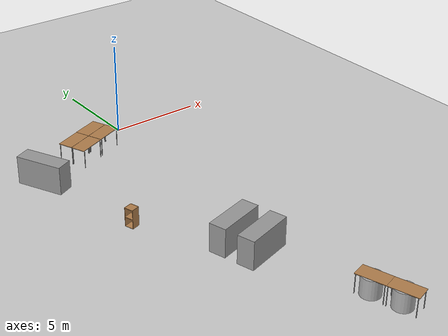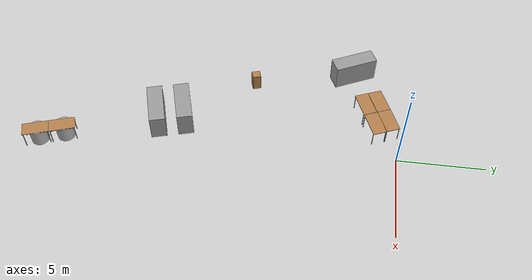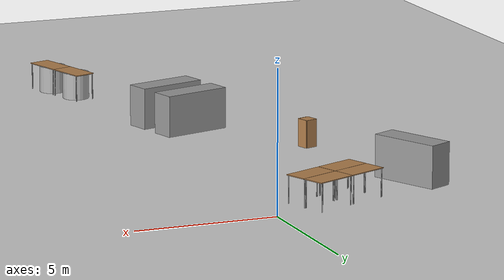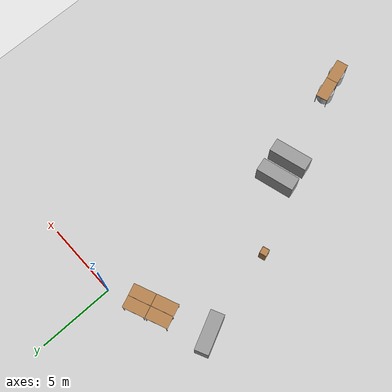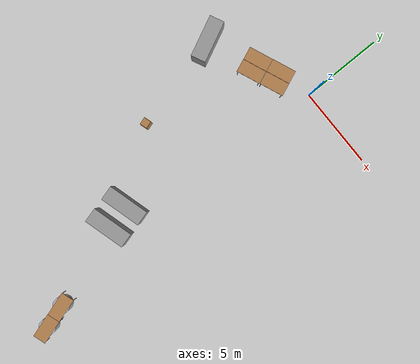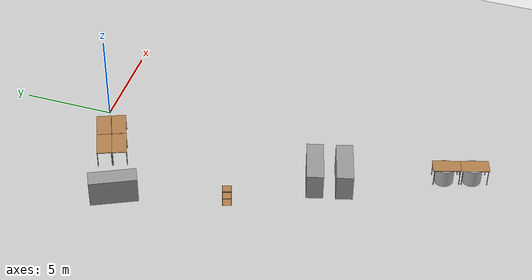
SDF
<sdf version="1.10">
 <world name="maze">
  <model name="ground_plane">
   <static>true</static>
   <link name="link">
    <collision name="collision">
     <geometry><plane><normal>0 0 1</normal><size>100 100</size></plane></geometry>
    </collision>
    <visual name="visual">
     <geometry><plane><normal>0 0 1</normal><size>100 100</size></plane></geometry>
     <material>
      <ambient>0.800000012 0.800000012 0.800000012 1</ambient>
      <diffuse>0.800000012 0.800000012 0.800000012 1</diffuse>
      <specular>0.800000012 0.800000012 0.800000012 1</specular>
     </material>
     <plugin name="__default__" filename="__default__"/>
    </visual>
    <inertial>
     <mass>1</mass>
     <inertia><ixx>1</ixx><ixy>0</ixy><ixz>0</ixz><iyy>1</iyy><iyz>0</iyz><izz>1</izz></inertia>
    </inertial>
   </link>
   <plugin name="__default__" filename="__default__"/>
  </model>
  <model name="unit_box_clone_clone_1">
   <link name="link">
    <inertial>
     <mass>4.59091</mass>
     <inertia>
      <ixx>4.0056099999999999</ixx>
      <ixy>0</ixy>
      <ixz>0</ixz>
      <iyy>1.8309800000000001</iyy>
      <iyz>0</iyz>
      <izz>2.7995999999999999</izz>
     </inertia>
    </inertial>
    <visual name="visual">
     <geometry><box><size>0.90377099999999999 2.5497000000000001 1.99227</size></box></geometry>
     <material>
      <script><name>Gazebo/Grey</name><uri>file:///usr/share/gz/gz-sim8/media/gazebo.material</uri></script>
      <shader type="pixel"/>
     </material>
     <cast_shadows>false</cast_shadows>
    </visual>
    <collision name="collision">
     <geometry><box><size>0.90377099999999999 2.5497000000000001 1.99227</size></box></geometry>
     <surface>
      <friction>
       <ode><mu>1</mu><mu2>1</mu2><fdir1>0 0 0</fdir1><slip1>0</slip1><slip2>0</slip2></ode>
       <torsional>
        <coefficient>1</coefficient>
        <patch_radius>0</patch_radius>
        <surface_radius>0</surface_radius>
        <use_patch_radius>true</use_patch_radius>
        <ode><slip>0</slip></ode>
       </torsional>
      </friction>
      <bounce><restitution_coefficient>0</restitution_coefficient><threshold>1000000</threshold></bounce>
      <contact>
       <collide_without_contact>false</collide_without_contact>
       <collide_without_contact_bitmask>1</collide_without_contact_bitmask>
       <collide_bitmask>1</collide_bitmask>
       <ode>
        <soft_cfm>0</soft_cfm>
        <soft_erp>0.20000000000000001</soft_erp>
        <kp>10000000000000</kp>
        <kd>1</kd>
        <max_vel>0.01</max_vel>
        <min_depth>0</min_depth>
       </ode>
       <bullet>
        <split_impulse>true</split_impulse>
        <split_impulse_penetration_threshold>-0.01</split_impulse_penetration_threshold>
        <soft_cfm>0</soft_cfm>
        <soft_erp>0.20000000000000001</soft_erp>
        <kp>10000000000000</kp>
        <kd>1</kd>
       </bullet>
      </contact>
     </surface>
    </collision>
   </link>
   <static>false</static>
   <pose>-1.7439735747344609 -12.485835531810412 0.50210847685340998 -2.5052772549634027e-18 -8.0887639393970878e-18 -1.3000000012872535</pose>
  </model>
  <model name="unit_box_clone_clone_2">
   <link name="link">
    <inertial>
     <mass>4.59091</mass>
     <inertia>
      <ixx>4.0056099999999999</ixx>
      <ixy>0</ixy>
      <ixz>0</ixz>
      <iyy>1.8309800000000001</iyy>
      <iyz>0</iyz>
      <izz>2.7995999999999999</izz>
     </inertia>
    </inertial>
    <visual name="visual">
     <geometry><box><size>0.90377099999999999 2.5497000000000001 1.99227</size></box></geometry>
     <material>
      <script><name>Gazebo/Grey</name><uri>file:///usr/share/gz/gz-sim8/media/gazebo.material</uri></script>
      <shader type="pixel"/>
     </material>
     <cast_shadows>false</cast_shadows>
    </visual>
    <collision name="collision">
     <geometry><box><size>0.90377099999999999 2.5497000000000001 1.99227</size></box></geometry>
     <surface>
      <friction>
       <ode><mu>1</mu><mu2>1</mu2><fdir1>0 0 0</fdir1><slip1>0</slip1><slip2>0</slip2></ode>
       <torsional>
        <coefficient>1</coefficient>
        <patch_radius>0</patch_radius>
        <surface_radius>0</surface_radius>
        <use_patch_radius>true</use_patch_radius>
        <ode><slip>0</slip></ode>
       </torsional>
      </friction>
      <bounce><restitution_coefficient>0</restitution_coefficient><threshold>1000000</threshold></bounce>
      <contact>
       <collide_without_contact>false</collide_without_contact>
       <collide_without_contact_bitmask>1</collide_without_contact_bitmask>
       <collide_bitmask>1</collide_bitmask>
       <ode>
        <soft_cfm>0</soft_cfm>
        <soft_erp>0.20000000000000001</soft_erp>
        <kp>10000000000000</kp>
        <kd>1</kd>
        <max_vel>0.01</max_vel>
        <min_depth>0</min_depth>
       </ode>
       <bullet>
        <split_impulse>true</split_impulse>
        <split_impulse_penetration_threshold>-0.01</split_impulse_penetration_threshold>
        <soft_cfm>0</soft_cfm>
        <soft_erp>0.20000000000000001</soft_erp>
        <kp>10000000000000</kp>
        <kd>1</kd>
       </bullet>
      </contact>
     </surface>
    </collision>
   </link>
   <static>false</static>
   <pose>-1.3428011409448706 -13.994542338813043 0.50210847685340998 -1.7952223853358381e-18 -1.2574476912388277e-17 -1.3000000012872535</pose>
  </model>
  <model name="cabinet_clone_1">
   <static>true</static>
   <link name="cabinet_bottom_plate">
    <inertial>
     <pose>0 0 -1 0 0 0</pose>
     <inertia>
      <ixx>2.0499999999999998</ixx>
      <ixy>0</ixy>
      <ixz>0</ixz>
      <iyy>2.0499999999999998</iyy>
      <iyz>0</iyz>
      <izz>2.0499999999999998</izz>
     </inertia>
     <mass>25</mass>
    </inertial>
    <collision name="cabinet_bottom_plate_geom">
     <pose>0 0 0.01 0 0 0</pose>
     <geometry><box><size>0.45000000000000001 0.45000000000000001 0.02</size></box></geometry>
    </collision>
    <visual name="cabinet_bottom_plate_geom_visual">
     <pose>0 0 0.01 0 0 0</pose>
     <geometry><box><size>0.45000000000000001 0.45000000000000001 0.02</size></box></geometry>
     <material>
      <script><uri>file:///usr/share/gz/gz-sim8/media/gazebo.material</uri><name>Gazebo/Wood</name></script>
     </material>
    </visual>
    <collision name="cabinet_bottom_plate_geom_cabinet_back_plate">
     <pose>0.23499999999999999 0 0.51000000000000001 0 0 0</pose>
     <geometry><box><size>0.02 0.45000000000000001 1.02</size></box></geometry>
    </collision>
    <visual name="cabinet_bottom_plate_geom_cabinet_back_plate_visual">
     <pose>0.23499999999999999 0 0.51000000000000001 0 0 0</pose>
     <geometry><box><size>0.02 0.45000000000000001 1.02</size></box></geometry>
     <material>
      <script><uri>file:///usr/share/gz/gz-sim8/media/gazebo.material</uri><name>Gazebo/Wood</name></script>
     </material>
    </visual>
    <collision name="cabinet_bottom_plate_geom_cabinet_left_plate">
     <pose>0 0.23499999999999999 0.51000000000000001 0 0 0</pose>
     <geometry><box><size>0.45000000000000001 0.02 1.02</size></box></geometry>
    </collision>
    <visual name="cabinet_bottom_plate_geom_cabinet_left_plate_visual">
     <pose>0 0.23499999999999999 0.51000000000000001 0 0 0</pose>
     <geometry><box><size>0.45000000000000001 0.02 1.02</size></box></geometry>
     <material>
      <script><uri>file:///usr/share/gz/gz-sim8/media/gazebo.material</uri><name>Gazebo/Wood</name></script>
     </material>
    </visual>
    <collision name="cabinet_bottom_plate_geom_cabinet_middle_plate">
     <pose>0 0 0.51000000000000001 0 0 0</pose>
     <geometry><box><size>0.45000000000000001 0.45000000000000001 0.02</size></box></geometry>
    </collision>
    <visual name="cabinet_bottom_plate_geom_cabinet_middle_plate_visual">
     <pose>0 0 0.51000000000000001 0 0 0</pose>
     <geometry><box><size>0.45000000000000001 0.45000000000000001 0.02</size></box></geometry>
     <material>
      <script><uri>file:///usr/share/gz/gz-sim8/media/gazebo.material</uri><name>Gazebo/Wood</name></script>
     </material>
    </visual>
    <collision name="cabinet_bottom_plate_geom_cabinet_right_plate">
     <pose>0 -0.23499999999999999 0.51000000000000001 0 0 0</pose>
     <geometry><box><size>0.45000000000000001 0.02 1.02</size></box></geometry>
    </collision>
    <visual name="cabinet_bottom_plate_geom_cabinet_right_plate_visual">
     <pose>0 -0.23499999999999999 0.51000000000000001 0 0 0</pose>
     <geometry><box><size>0.45000000000000001 0.02 1.02</size></box></geometry>
     <material>
      <script><uri>file:///usr/share/gz/gz-sim8/media/gazebo.material</uri><name>Gazebo/Wood</name></script>
     </material>
    </visual>
    <collision name="cabinet_bottom_plate_geom_cabinet_top_plate">
     <pose>0 0 1.01 0 0 0</pose>
     <geometry><box><size>0.45000000000000001 0.45000000000000001 0.02</size></box></geometry>
    </collision>
    <visual name="cabinet_bottom_plate_geom_cabinet_top_plate_visual">
     <pose>0 0 1.01 0 0 0</pose>
     <geometry><box><size>0.45000000000000001 0.45000000000000001 0.02</size></box></geometry>
     <material>
      <script><uri>file:///usr/share/gz/gz-sim8/media/gazebo.material</uri><name>Gazebo/Wood</name></script>
     </material>
    </visual>
   </link>
   <pose>-4.7265032566740661 -8.5677660734086736 0 0 0 0.29999999139831662</pose>
  </model>
  <model name="table_1_1">
   <static>true</static>
   <link name="link">
    <collision name="surface">
     <pose>0 0 1 0 0 0</pose>
     <geometry><box><size>1.5 0.80000000000000004 0.029999999999999999</size></box></geometry>
     <surface><friction><ode><mu>0.59999999999999998</mu><mu2>0.59999999999999998</mu2></ode></friction></surface>
    </collision>
    <visual name="visual1">
     <pose>0 0 1 0 0 0</pose>
     <geometry><box><size>1.5 0.80000000000000004 0.029999999999999999</size></box></geometry>
     <material>
      <script><uri>file:///usr/share/gz/gz-sim8/media/gazebo.material</uri><name>Gazebo/Wood</name></script>
     </material>
    </visual>
    <collision name="front_left_leg">
     <pose>0.68000000000000005 0.38 0.5 0 0 0</pose>
     <geometry><cylinder><radius>0.02</radius><length>1</length></cylinder></geometry>
    </collision>
    <visual name="front_left_leg">
     <pose>0.68000000000000005 0.38 0.5 0 0 0</pose>
     <geometry><cylinder><radius>0.02</radius><length>1</length></cylinder></geometry>
     <material>
      <script><uri>file:///usr/share/gz/gz-sim8/media/gazebo.material</uri><name>Gazebo/Grey</name></script>
     </material>
    </visual>
    <collision name="front_right_leg">
     <pose>0.68000000000000005 -0.38 0.5 0 0 0</pose>
     <geometry><cylinder><radius>0.02</radius><length>1</length></cylinder></geometry>
    </collision>
    <visual name="front_right_leg">
     <pose>0.68000000000000005 -0.38 0.5 0 0 0</pose>
     <geometry><cylinder><radius>0.02</radius><length>1</length></cylinder></geometry>
     <material>
      <script><uri>file:///usr/share/gz/gz-sim8/media/gazebo.material</uri><name>Gazebo/Grey</name></script>
     </material>
    </visual>
    <collision name="back_right_leg">
     <pose>-0.68000000000000005 -0.38 0.5 0 0 0</pose>
     <geometry><cylinder><radius>0.02</radius><length>1</length></cylinder></geometry>
    </collision>
    <visual name="back_right_leg">
     <pose>-0.68000000000000005 -0.38 0.5 0 0 0</pose>
     <geometry><cylinder><radius>0.02</radius><length>1</length></cylinder></geometry>
     <material>
      <script><uri>file:///usr/share/gz/gz-sim8/media/gazebo.material</uri><name>Gazebo/Grey</name></script>
     </material>
    </visual>
    <collision name="back_left_leg">
     <pose>-0.68000000000000005 0.38 0.5 0 0 0</pose>
     <geometry><cylinder><radius>0.02</radius><length>1</length></cylinder></geometry>
    </collision>
    <visual name="back_left_leg">
     <pose>-0.68000000000000005 0.38 0.5 0 0 0</pose>
     <geometry><cylinder><radius>0.02</radius><length>1</length></cylinder></geometry>
     <material>
      <script><uri>file:///usr/share/gz/gz-sim8/media/gazebo.material</uri><name>Gazebo/Grey</name></script>
     </material>
    </visual>
    <inertial>
     <mass>1</mass>
     <inertia><ixx>1</ixx><ixy>0</ixy><ixz>0</ixz><iyy>1</iyy><iyz>0</iyz><izz>1</izz></inertia>
    </inertial>
   </link>
   <pose>0.48050966858863831 -19.112222671508789 0 0 0 -1.2661400235226867</pose>
  </model>
  <model name="table_0_clone_1_2_1">
   <static>true</static>
   <link name="link">
    <collision name="surface">
     <pose>0 0 1 0 0 0</pose>
     <geometry><box><size>1.5 0.80000000000000004 0.029999999999999999</size></box></geometry>
     <surface><friction><ode><mu>0.59999999999999998</mu><mu2>0.59999999999999998</mu2></ode></friction></surface>
    </collision>
    <visual name="visual1">
     <pose>0 0 1 0 0 0</pose>
     <geometry><box><size>1.5 0.80000000000000004 0.029999999999999999</size></box></geometry>
     <material>
      <script><uri>file:///usr/share/gz/gz-sim8/media/gazebo.material</uri><name>Gazebo/Wood</name></script>
     </material>
    </visual>
    <collision name="front_left_leg">
     <pose>0.68000000000000005 0.38 0.5 0 0 0</pose>
     <geometry><cylinder><radius>0.02</radius><length>1</length></cylinder></geometry>
    </collision>
    <visual name="front_left_leg">
     <pose>0.68000000000000005 0.38 0.5 0 0 0</pose>
     <geometry><cylinder><radius>0.02</radius><length>1</length></cylinder></geometry>
     <material>
      <script><uri>file:///usr/share/gz/gz-sim8/media/gazebo.material</uri><name>Gazebo/Grey</name></script>
     </material>
    </visual>
    <collision name="front_right_leg">
     <pose>0.68000000000000005 -0.38 0.5 0 0 0</pose>
     <geometry><cylinder><radius>0.02</radius><length>1</length></cylinder></geometry>
    </collision>
    <visual name="front_right_leg">
     <pose>0.68000000000000005 -0.38 0.5 0 0 0</pose>
     <geometry><cylinder><radius>0.02</radius><length>1</length></cylinder></geometry>
     <material>
      <script><uri>file:///usr/share/gz/gz-sim8/media/gazebo.material</uri><name>Gazebo/Grey</name></script>
     </material>
    </visual>
    <collision name="back_right_leg">
     <pose>-0.68000000000000005 -0.38 0.5 0 0 0</pose>
     <geometry><cylinder><radius>0.02</radius><length>1</length></cylinder></geometry>
    </collision>
    <visual name="back_right_leg">
     <pose>-0.68000000000000005 -0.38 0.5 0 0 0</pose>
     <geometry><cylinder><radius>0.02</radius><length>1</length></cylinder></geometry>
     <material>
      <script><uri>file:///usr/share/gz/gz-sim8/media/gazebo.material</uri><name>Gazebo/Grey</name></script>
     </material>
    </visual>
    <collision name="back_left_leg">
     <pose>-0.68000000000000005 0.38 0.5 0 0 0</pose>
     <geometry><cylinder><radius>0.02</radius><length>1</length></cylinder></geometry>
    </collision>
    <visual name="back_left_leg">
     <pose>-0.68000000000000005 0.38 0.5 0 0 0</pose>
     <geometry><cylinder><radius>0.02</radius><length>1</length></cylinder></geometry>
     <material>
      <script><uri>file:///usr/share/gz/gz-sim8/media/gazebo.material</uri><name>Gazebo/Grey</name></script>
     </material>
    </visual>
    <inertial>
     <mass>1</mass>
     <inertia><ixx>1</ixx><ixy>0</ixy><ixz>0</ixz><iyy>1</iyy><iyz>0</iyz><izz>1</izz></inertia>
    </inertial>
   </link>
   <pose>-2.0818293653912012 -0.582227265652703 0 0 0 0.39148300300700239</pose>
  </model>
  <model name="table_0_clone_1_2_2">
   <static>true</static>
   <link name="link">
    <collision name="surface">
     <pose>0 0 1 0 0 0</pose>
     <geometry><box><size>1.5 0.80000000000000004 0.029999999999999999</size></box></geometry>
     <surface><friction><ode><mu>0.59999999999999998</mu><mu2>0.59999999999999998</mu2></ode></friction></surface>
    </collision>
    <visual name="visual1">
     <pose>0 0 1 0 0 0</pose>
     <geometry><box><size>1.5 0.80000000000000004 0.029999999999999999</size></box></geometry>
     <material>
      <script><uri>file:///usr/share/gz/gz-sim8/media/gazebo.material</uri><name>Gazebo/Wood</name></script>
     </material>
    </visual>
    <collision name="front_left_leg">
     <pose>0.68000000000000005 0.38 0.5 0 0 0</pose>
     <geometry><cylinder><radius>0.02</radius><length>1</length></cylinder></geometry>
    </collision>
    <visual name="front_left_leg">
     <pose>0.68000000000000005 0.38 0.5 0 0 0</pose>
     <geometry><cylinder><radius>0.02</radius><length>1</length></cylinder></geometry>
     <material>
      <script><uri>file:///usr/share/gz/gz-sim8/media/gazebo.material</uri><name>Gazebo/Grey</name></script>
     </material>
    </visual>
    <collision name="front_right_leg">
     <pose>0.68000000000000005 -0.38 0.5 0 0 0</pose>
     <geometry><cylinder><radius>0.02</radius><length>1</length></cylinder></geometry>
    </collision>
    <visual name="front_right_leg">
     <pose>0.68000000000000005 -0.38 0.5 0 0 0</pose>
     <geometry><cylinder><radius>0.02</radius><length>1</length></cylinder></geometry>
     <material>
      <script><uri>file:///usr/share/gz/gz-sim8/media/gazebo.material</uri><name>Gazebo/Grey</name></script>
     </material>
    </visual>
    <collision name="back_right_leg">
     <pose>-0.68000000000000005 -0.38 0.5 0 0 0</pose>
     <geometry><cylinder><radius>0.02</radius><length>1</length></cylinder></geometry>
    </collision>
    <visual name="back_right_leg">
     <pose>-0.68000000000000005 -0.38 0.5 0 0 0</pose>
     <geometry><cylinder><radius>0.02</radius><length>1</length></cylinder></geometry>
     <material>
      <script><uri>file:///usr/share/gz/gz-sim8/media/gazebo.material</uri><name>Gazebo/Grey</name></script>
     </material>
    </visual>
    <collision name="back_left_leg">
     <pose>-0.68000000000000005 0.38 0.5 0 0 0</pose>
     <geometry><cylinder><radius>0.02</radius><length>1</length></cylinder></geometry>
    </collision>
    <visual name="back_left_leg">
     <pose>-0.68000000000000005 0.38 0.5 0 0 0</pose>
     <geometry><cylinder><radius>0.02</radius><length>1</length></cylinder></geometry>
     <material>
      <script><uri>file:///usr/share/gz/gz-sim8/media/gazebo.material</uri><name>Gazebo/Grey</name></script>
     </material>
    </visual>
    <inertial>
     <mass>1</mass>
     <inertia><ixx>1</ixx><ixy>0</ixy><ixz>0</ixz><iyy>1</iyy><iyz>0</iyz><izz>1</izz></inertia>
    </inertial>
   </link>
   <pose>-1.7710240382951383 -1.3288000502575326 0 0 0 0.39148300300700239</pose>
  </model>
  <model name="table_0_clone_1_2_3">
   <static>true</static>
   <link name="link">
    <collision name="surface">
     <pose>0 0 1 0 0 0</pose>
     <geometry><box><size>1.5 0.80000000000000004 0.029999999999999999</size></box></geometry>
     <surface><friction><ode><mu>0.59999999999999998</mu><mu2>0.59999999999999998</mu2></ode></friction></surface>
    </collision>
    <visual name="visual1">
     <pose>0 0 1 0 0 0</pose>
     <geometry><box><size>1.5 0.80000000000000004 0.029999999999999999</size></box></geometry>
     <material>
      <script><uri>file:///usr/share/gz/gz-sim8/media/gazebo.material</uri><name>Gazebo/Wood</name></script>
     </material>
    </visual>
    <collision name="front_left_leg">
     <pose>0.68000000000000005 0.38 0.5 0 0 0</pose>
     <geometry><cylinder><radius>0.02</radius><length>1</length></cylinder></geometry>
    </collision>
    <visual name="front_left_leg">
     <pose>0.68000000000000005 0.38 0.5 0 0 0</pose>
     <geometry><cylinder><radius>0.02</radius><length>1</length></cylinder></geometry>
     <material>
      <script><uri>file:///usr/share/gz/gz-sim8/media/gazebo.material</uri><name>Gazebo/Grey</name></script>
     </material>
    </visual>
    <collision name="front_right_leg">
     <pose>0.68000000000000005 -0.38 0.5 0 0 0</pose>
     <geometry><cylinder><radius>0.02</radius><length>1</length></cylinder></geometry>
    </collision>
    <visual name="front_right_leg">
     <pose>0.68000000000000005 -0.38 0.5 0 0 0</pose>
     <geometry><cylinder><radius>0.02</radius><length>1</length></cylinder></geometry>
     <material>
      <script><uri>file:///usr/share/gz/gz-sim8/media/gazebo.material</uri><name>Gazebo/Grey</name></script>
     </material>
    </visual>
    <collision name="back_right_leg">
     <pose>-0.68000000000000005 -0.38 0.5 0 0 0</pose>
     <geometry><cylinder><radius>0.02</radius><length>1</length></cylinder></geometry>
    </collision>
    <visual name="back_right_leg">
     <pose>-0.68000000000000005 -0.38 0.5 0 0 0</pose>
     <geometry><cylinder><radius>0.02</radius><length>1</length></cylinder></geometry>
     <material>
      <script><uri>file:///usr/share/gz/gz-sim8/media/gazebo.material</uri><name>Gazebo/Grey</name></script>
     </material>
    </visual>
    <collision name="back_left_leg">
     <pose>-0.68000000000000005 0.38 0.5 0 0 0</pose>
     <geometry><cylinder><radius>0.02</radius><length>1</length></cylinder></geometry>
    </collision>
    <visual name="back_left_leg">
     <pose>-0.68000000000000005 0.38 0.5 0 0 0</pose>
     <geometry><cylinder><radius>0.02</radius><length>1</length></cylinder></geometry>
     <material>
      <script><uri>file:///usr/share/gz/gz-sim8/media/gazebo.material</uri><name>Gazebo/Grey</name></script>
     </material>
    </visual>
    <inertial>
     <mass>1</mass>
     <inertia><ixx>1</ixx><ixy>0</ixy><ixz>0</ixz><iyy>1</iyy><iyz>0</iyz><izz>1</izz></inertia>
    </inertial>
   </link>
   <pose>-3.4672804565604149 -1.1671978572737922 0 0 0 0.39148300300700239</pose>
  </model>
  <model name="table_0_clone_1_2_4">
   <static>true</static>
   <link name="link">
    <collision name="surface">
     <pose>0 0 1 0 0 0</pose>
     <geometry><box><size>1.5 0.80000000000000004 0.029999999999999999</size></box></geometry>
     <surface><friction><ode><mu>0.59999999999999998</mu><mu2>0.59999999999999998</mu2></ode></friction></surface>
    </collision>
    <visual name="visual1">
     <pose>0 0 1 0 0 0</pose>
     <geometry><box><size>1.5 0.80000000000000004 0.029999999999999999</size></box></geometry>
     <material>
      <script><uri>file:///usr/share/gz/gz-sim8/media/gazebo.material</uri><name>Gazebo/Wood</name></script>
     </material>
    </visual>
    <collision name="front_left_leg">
     <pose>0.68000000000000005 0.38 0.5 0 0 0</pose>
     <geometry><cylinder><radius>0.02</radius><length>1</length></cylinder></geometry>
    </collision>
    <visual name="front_left_leg">
     <pose>0.68000000000000005 0.38 0.5 0 0 0</pose>
     <geometry><cylinder><radius>0.02</radius><length>1</length></cylinder></geometry>
     <material>
      <script><uri>file:///usr/share/gz/gz-sim8/media/gazebo.material</uri><name>Gazebo/Grey</name></script>
     </material>
    </visual>
    <collision name="front_right_leg">
     <pose>0.68000000000000005 -0.38 0.5 0 0 0</pose>
     <geometry><cylinder><radius>0.02</radius><length>1</length></cylinder></geometry>
    </collision>
    <visual name="front_right_leg">
     <pose>0.68000000000000005 -0.38 0.5 0 0 0</pose>
     <geometry><cylinder><radius>0.02</radius><length>1</length></cylinder></geometry>
     <material>
      <script><uri>file:///usr/share/gz/gz-sim8/media/gazebo.material</uri><name>Gazebo/Grey</name></script>
     </material>
    </visual>
    <collision name="back_right_leg">
     <pose>-0.68000000000000005 -0.38 0.5 0 0 0</pose>
     <geometry><cylinder><radius>0.02</radius><length>1</length></cylinder></geometry>
    </collision>
    <visual name="back_right_leg">
     <pose>-0.68000000000000005 -0.38 0.5 0 0 0</pose>
     <geometry><cylinder><radius>0.02</radius><length>1</length></cylinder></geometry>
     <material>
      <script><uri>file:///usr/share/gz/gz-sim8/media/gazebo.material</uri><name>Gazebo/Grey</name></script>
     </material>
    </visual>
    <collision name="back_left_leg">
     <pose>-0.68000000000000005 0.38 0.5 0 0 0</pose>
     <geometry><cylinder><radius>0.02</radius><length>1</length></cylinder></geometry>
    </collision>
    <visual name="back_left_leg">
     <pose>-0.68000000000000005 0.38 0.5 0 0 0</pose>
     <geometry><cylinder><radius>0.02</radius><length>1</length></cylinder></geometry>
     <material>
      <script><uri>file:///usr/share/gz/gz-sim8/media/gazebo.material</uri><name>Gazebo/Grey</name></script>
     </material>
    </visual>
    <inertial>
     <mass>1</mass>
     <inertia><ixx>1</ixx><ixy>0</ixy><ixz>0</ixz><iyy>1</iyy><iyz>0</iyz><izz>1</izz></inertia>
    </inertial>
   </link>
   <pose>-3.1658624308975818 -1.9177795514007414 0 0 0 0.39148300300700239</pose>
  </model>
  <model name="unit_box_clone_clone_clone_clone_2_1">
   <link name="link">
    <inertial>
     <mass>4.59091</mass>
     <inertia>
      <ixx>4.0056099999999999</ixx>
      <ixy>0</ixy>
      <ixz>0</ixz>
      <iyy>1.8309800000000001</iyy>
      <iyz>0</iyz>
      <izz>2.7995999999999999</izz>
     </inertia>
    </inertial>
    <visual name="visual">
     <geometry><box><size>0.90377099999999999 2.5497000000000001 1.99227</size></box></geometry>
     <material>
      <script><name>Gazebo/Grey</name><uri>file:///usr/share/gz/gz-sim8/media/gazebo.material</uri></script>
      <shader type="pixel"/>
     </material>
     <cast_shadows>false</cast_shadows>
    </visual>
    <collision name="collision">
     <geometry><box><size>0.90377099999999999 2.5497000000000001 1.99227</size></box></geometry>
     <surface>
      <friction>
       <ode><mu>1</mu><mu2>1</mu2><fdir1>0 0 0</fdir1><slip1>0</slip1><slip2>0</slip2></ode>
       <torsional>
        <coefficient>1</coefficient>
        <patch_radius>0</patch_radius>
        <surface_radius>0</surface_radius>
        <use_patch_radius>true</use_patch_radius>
        <ode><slip>0</slip></ode>
       </torsional>
      </friction>
      <bounce><restitution_coefficient>0</restitution_coefficient><threshold>1000000</threshold></bounce>
      <contact>
       <collide_without_contact>false</collide_without_contact>
       <collide_without_contact_bitmask>1</collide_without_contact_bitmask>
       <collide_bitmask>1</collide_bitmask>
       <ode>
        <soft_cfm>0</soft_cfm>
        <soft_erp>0.20000000000000001</soft_erp>
        <kp>10000000000000</kp>
        <kd>1</kd>
        <max_vel>0.01</max_vel>
        <min_depth>0</min_depth>
       </ode>
       <bullet>
        <split_impulse>true</split_impulse>
        <split_impulse_penetration_threshold>-0.01</split_impulse_penetration_threshold>
        <soft_cfm>0</soft_cfm>
        <soft_erp>0.20000000000000001</soft_erp>
        <kp>10000000000000</kp>
        <kd>1</kd>
       </bullet>
      </contact>
     </surface>
    </collision>
   </link>
   <static>false</static>
   <pose>-6.1505724846046945 -2.7637822295078722 0.50209897756576538 -5.3512698745604659e-18 5.3739100725985098e-19 -2.6962799919139395</pose>
  </model>
  <model name="table_1_1_1">
   <static>true</static>
   <link name="link">
    <collision name="surface">
     <pose>0 0 1 0 0 0</pose>
     <geometry><box><size>1.5 0.80000000000000004 0.029999999999999999</size></box></geometry>
     <surface><friction><ode><mu>0.59999999999999998</mu><mu2>0.59999999999999998</mu2></ode></friction></surface>
    </collision>
    <visual name="visual1">
     <pose>0 0 1 0 0 0</pose>
     <geometry><box><size>1.5 0.80000000000000004 0.029999999999999999</size></box></geometry>
     <material>
      <script><uri>file:///usr/share/gz/gz-sim8/media/gazebo.material</uri><name>Gazebo/Wood</name></script>
     </material>
    </visual>
    <collision name="front_left_leg">
     <pose>0.68000000000000005 0.38 0.5 0 0 0</pose>
     <geometry><cylinder><radius>0.02</radius><length>1</length></cylinder></geometry>
    </collision>
    <visual name="front_left_leg">
     <pose>0.68000000000000005 0.38 0.5 0 0 0</pose>
     <geometry><cylinder><radius>0.02</radius><length>1</length></cylinder></geometry>
     <material>
      <script><uri>file:///usr/share/gz/gz-sim8/media/gazebo.material</uri><name>Gazebo/Grey</name></script>
     </material>
    </visual>
    <collision name="front_right_leg">
     <pose>0.68000000000000005 -0.38 0.5 0 0 0</pose>
     <geometry><cylinder><radius>0.02</radius><length>1</length></cylinder></geometry>
    </collision>
    <visual name="front_right_leg">
     <pose>0.68000000000000005 -0.38 0.5 0 0 0</pose>
     <geometry><cylinder><radius>0.02</radius><length>1</length></cylinder></geometry>
     <material>
      <script><uri>file:///usr/share/gz/gz-sim8/media/gazebo.material</uri><name>Gazebo/Grey</name></script>
     </material>
    </visual>
    <collision name="back_right_leg">
     <pose>-0.68000000000000005 -0.38 0.5 0 0 0</pose>
     <geometry><cylinder><radius>0.02</radius><length>1</length></cylinder></geometry>
    </collision>
    <visual name="back_right_leg">
     <pose>-0.68000000000000005 -0.38 0.5 0 0 0</pose>
     <geometry><cylinder><radius>0.02</radius><length>1</length></cylinder></geometry>
     <material>
      <script><uri>file:///usr/share/gz/gz-sim8/media/gazebo.material</uri><name>Gazebo/Grey</name></script>
     </material>
    </visual>
    <collision name="back_left_leg">
     <pose>-0.68000000000000005 0.38 0.5 0 0 0</pose>
     <geometry><cylinder><radius>0.02</radius><length>1</length></cylinder></geometry>
    </collision>
    <visual name="back_left_leg">
     <pose>-0.68000000000000005 0.38 0.5 0 0 0</pose>
     <geometry><cylinder><radius>0.02</radius><length>1</length></cylinder></geometry>
     <material>
      <script><uri>file:///usr/share/gz/gz-sim8/media/gazebo.material</uri><name>Gazebo/Grey</name></script>
     </material>
    </visual>
    <inertial>
     <mass>1</mass>
     <inertia><ixx>1</ixx><ixy>0</ixy><ixz>0</ixz><iyy>1</iyy><iyz>0</iyz><izz>1</izz></inertia>
    </inertial>
   </link>
   <pose>0.924660294888906 -20.534971542609256 0 0 0 -1.2661400235226867</pose>
  </model>
  <model name="cylinder">
   <pose>0.4243880042696504 -19.036811743283653 0.49964271358796081 -4.3215837904132585e-05 9.152588043651009e-05 -1.0202658132793092e-07</pose>
   <link name="cylinder_link">
    <inertial>
     <inertia>
      <ixx>0.14580000000000001</ixx>
      <ixy>0</ixy>
      <ixz>0</ixz>
      <iyy>0.14580000000000001</iyy>
      <iyz>0</iyz>
      <izz>0.125</izz>
     </inertia>
     <mass>1</mass>
    </inertial>
    <collision name="cylinder_collision">
     <geometry><cylinder><radius>0.5</radius><length>1</length></cylinder></geometry>
    </collision>
    <visual name="cylinder_visual">
     <geometry><cylinder><radius>0.5</radius><length>1</length></cylinder></geometry>
     <material>
      <ambient>0.300000012 0.300000012 0.300000012 1</ambient>
      <diffuse>0.699999988 0.699999988 0.699999988 1</diffuse>
      <specular>1 1 1 1</specular>
     </material>
    </visual>
   </link>
   <static>false</static>
  </model>
  <model name="cylinder_0">
   <pose>0.88141180612285774 -20.447468945584554 0.49963395644799891 -2.111447104219991e-05 4.4428818357232696e-05 -4.6143160071331202e-08</pose>
   <link name="cylinder_link">
    <inertial>
     <inertia>
      <ixx>0.14580000000000001</ixx>
      <ixy>0</ixy>
      <ixz>0</ixz>
      <iyy>0.14580000000000001</iyy>
      <iyz>0</iyz>
      <izz>0.125</izz>
     </inertia>
     <mass>1</mass>
    </inertial>
    <collision name="cylinder_collision">
     <geometry><cylinder><radius>0.5</radius><length>1</length></cylinder></geometry>
    </collision>
    <visual name="cylinder_visual">
     <geometry><cylinder><radius>0.5</radius><length>1</length></cylinder></geometry>
     <material>
      <ambient>0.300000012 0.300000012 0.300000012 1</ambient>
      <diffuse>0.699999988 0.699999988 0.699999988 1</diffuse>
      <specular>1 1 1 1</specular>
     </material>
    </visual>
   </link>
   <static>false</static>
  </model>
 </world>
</sdf>
